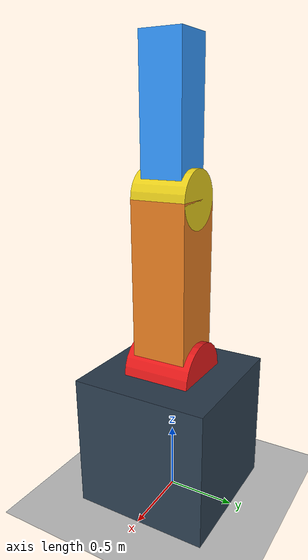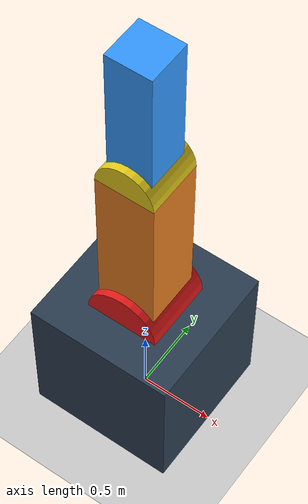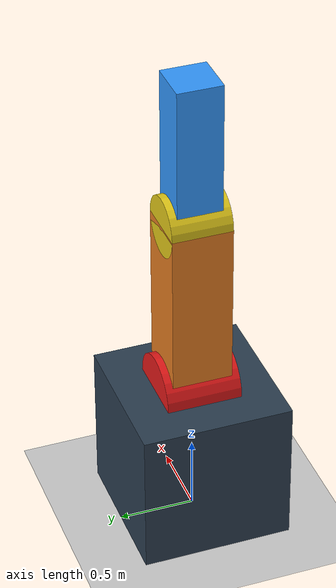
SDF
<?xml version="1.0" ?>
<sdf version="1.9">

  <world name="robot_world">

    <physics name="1ms" type="ode">
      <max_step_size>0.001</max_step_size>
      <real_time_factor>1</real_time_factor>
    </physics>

    <gui fullscreen="0">
      <camera name="user_camera">
        <!-- x y z roll pitch yaw (Positioned to the right side of the arm) -->
        <pose>0 -5 1.5 0 0 1.5708</pose>
        <view_controller>orbit</view_controller>
      </camera>
    </gui>

    <!-- World Plugins -->
    <plugin filename="gz-sim-physics-system" name="gz::sim::systems::Physics"/>
    <plugin filename="gz-sim-user-commands-system" name="gz::sim::systems::UserCommands"/>
    <plugin filename="gz-sim-scene-broadcaster-system" name="gz::sim::systems::SceneBroadcaster"/>

    <!-- High-Visibility Scene Lighting -->
    <scene>
      <ambient>0.7 0.7 0.7 1</ambient>
      <background>0.8 0.85 0.9 1</background>
      <shadows>false</shadows>
    </scene>

    <light type="directional" name="sun">
      <cast_shadows>false</cast_shadows>
      <pose>5 5 10 0 0 0</pose>
      <diffuse>0.9 0.9 0.9 1</diffuse>
      <specular>0.1 0.1 0.1 1</specular>
      <direction>-0.5 -0.5 -1</direction>
    </light>

    <!-- Ground Plane -->
    <model name="ground">
      <static>true</static>
      <link name="ground_link">
        <collision name="collision">
          <geometry>
            <plane>
              <normal>0 0 1</normal>
              <size>20 20</size>
            </plane>
          </geometry>
        </collision>
        <visual name="visual">
          <geometry>
            <plane>
              <normal>0 0 1</normal>
              <size>20 20</size>
            </plane>
          </geometry>
          <material>
            <ambient>0.8 0.8 0.8 1</ambient>
            <diffuse>0.8 0.8 0.8 1</diffuse>
          </material>
        </visual>
      </link>
    </model>

    <!-- 2-DOF Robot Model -->
    <model name="test_robot">

      <!-- Joint Telemetry & Position Controller Plugins -->
      <plugin filename="gz-sim-joint-state-publisher-system" name="gz::sim::systems::JointStatePublisher"/>

      <plugin filename="gz-sim-joint-position-controller-system" name="gz::sim::systems::JointPositionController">
        <joint_name>shoulder_joint</joint_name>
        <p_gain>100</p_gain>
        <i_gain>0.1</i_gain>
        <d_gain>10</d_gain>
        <topic>/model/test_robot/joint/shoulder_joint/cmd_pos</topic>
      </plugin>

      <plugin filename="gz-sim-joint-position-controller-system" name="gz::sim::systems::JointPositionController">
        <joint_name>elbow_joint</joint_name>
        <p_gain>100</p_gain>
        <i_gain>0.1</i_gain>
        <d_gain>10</d_gain>
        <topic>/model/test_robot/joint/elbow_joint/cmd_pos</topic>
      </plugin>

      <!-- BASE LINK (Dark Slate) -->
      <link name="base">
        <pose>0 0 0.5 0 0 0</pose>
        <inertial>
          <mass>5</mass>
          <inertia>
            <ixx>0.1</ixx><iyy>0.1</iyy><izz>0.1</izz>
          </inertia>
        </inertial>
        <visual name="visual">
          <geometry>
            <box><size>1 1 1</size></box>
          </geometry>
          <material>
            <ambient>0.17 0.24 0.31 1</ambient>
            <diffuse>0.17 0.24 0.31 1</diffuse>
          </material>
        </visual>
        <collision name="collision">
          <geometry>
            <box><size>1 1 1</size></box>
          </geometry>
        </collision>
      </link>

      <!-- FIX: Fixed Joint Anchoring Base to World -->
      <joint name="world_fixed_joint" type="fixed">
        <parent>world</parent>
        <child>base</child>
      </joint>

      <!-- LINK 1: SHOULDER (Orange) -->
      <link name="shoulder_link">
        <pose>0 0 1.5 0 0 0</pose>
        <inertial>
          <mass>2</mass>
          <inertia>
            <ixx>0.05</ixx><iyy>0.05</iyy><izz>0.05</izz>
          </inertia>
        </inertial>
        <visual name="visual">
          <geometry>
            <box><size>0.4 0.4 1.5</size></box>
          </geometry>
          <material>
            <ambient>0.9 0.49 0.13 1</ambient>
            <diffuse>0.9 0.49 0.13 1</diffuse>
          </material>
        </visual>
        <!-- Red Joint Marker at Axis -->
        <visual name="joint_marker">
          <pose>0 0 -0.5 1.5708 0 0</pose>
          <geometry>
            <cylinder><radius>0.25</radius><length>0.5</length></cylinder>
          </geometry>
          <material>
            <ambient>0.9 0.1 0.1 1</ambient>
            <diffuse>0.9 0.1 0.1 1</diffuse>
          </material>
        </visual>
        <collision name="collision">
          <geometry>
            <box><size>0.4 0.4 1.5</size></box>
          </geometry>
        </collision>
      </link>

      <!-- JOINT 1: SHOULDER (DOF 1) -->
      <joint name="shoulder_joint" type="revolute">
        <parent>base</parent>
        <child>shoulder_link</child>
        <pose>0 0 -0.5 0 0 0</pose>
        <axis>
          <xyz>0 1 0</xyz>
          <limit>
            <lower>-1.5708</lower>
            <upper>1.5708</upper>
          </limit>
        </axis>
      </joint>

      <!-- LINK 2: ELBOW (Blue) -->
      <link name="elbow_link">
        <pose>0 0 2.75 0 0 0</pose>
        <inertial>
          <mass>1</mass>
          <inertia>
            <ixx>0.03</ixx><iyy>0.03</iyy><izz>0.03</izz>
          </inertia>
        </inertial>
        <visual name="visual">
          <geometry>
            <box><size>0.3 0.3 1</size></box>
          </geometry>
          <material>
            <ambient>0.2 0.6 1.0 1</ambient>
            <diffuse>0.2 0.6 1.0 1</diffuse>
          </material>
        </visual>
        <!-- Yellow Joint Marker at Axis -->
        <visual name="joint_marker">
          <pose>0 0 -0.5 1.5708 0 0</pose>
          <geometry>
            <cylinder><radius>0.2</radius><length>0.4</length></cylinder>
          </geometry>
          <material>
            <ambient>0.9 0.8 0.1 1</ambient>
            <diffuse>0.9 0.8 0.1 1</diffuse>
          </material>
        </visual>
        <collision name="collision">
          <geometry>
            <box><size>0.3 0.3 1</size></box>
          </geometry>
        </collision>
      </link>

      <!-- JOINT 2: ELBOW (DOF 2) -->
      <joint name="elbow_joint" type="revolute">
        <parent>shoulder_link</parent>
        <child>elbow_link</child>
        <pose>0 0 -0.5 0 0 0</pose>
        <axis>
          <xyz>0 1 0</xyz>
          <limit>
            <lower>-1.5708</lower>
            <upper>1.5708</upper>
          </limit>
        </axis>
      </joint>

    </model>

  </world>
</sdf>
